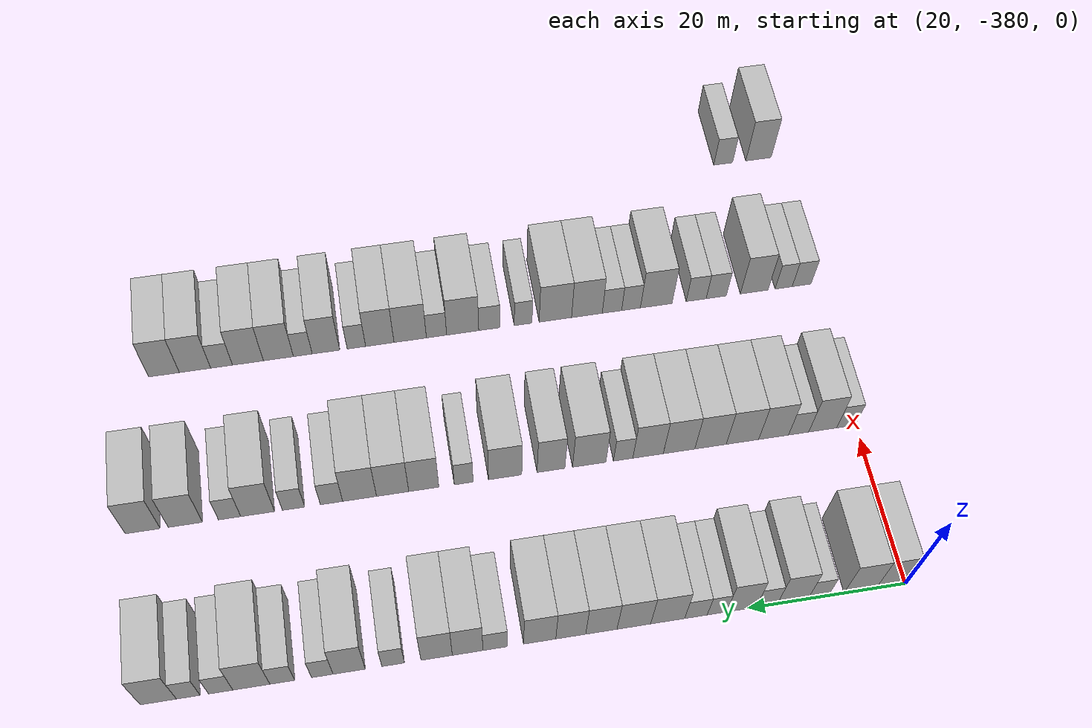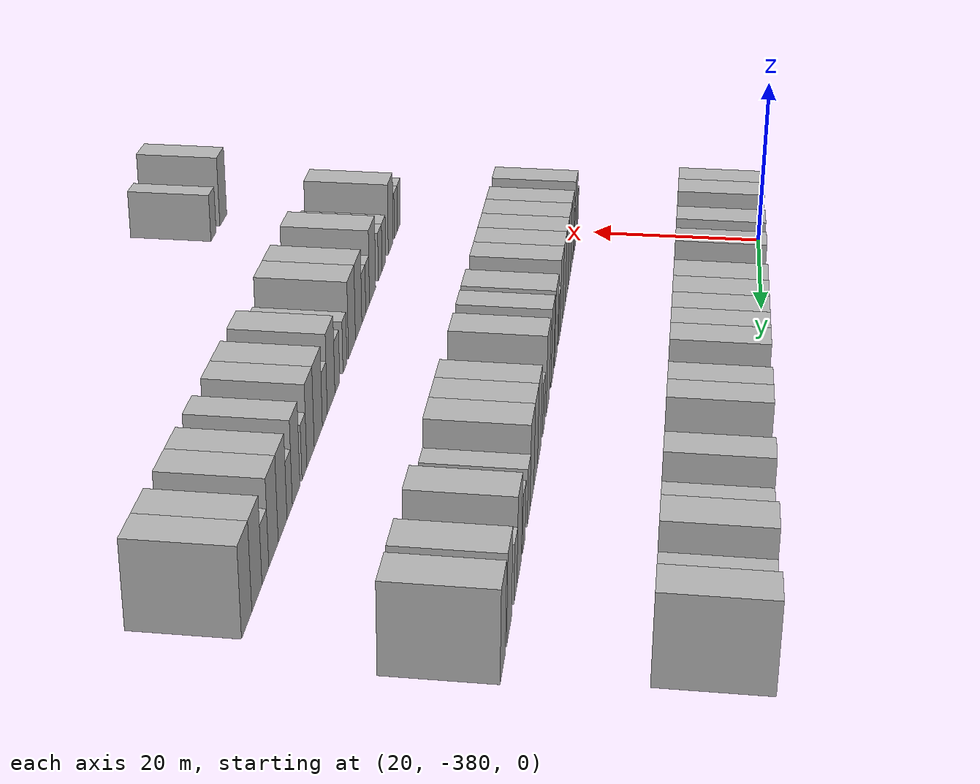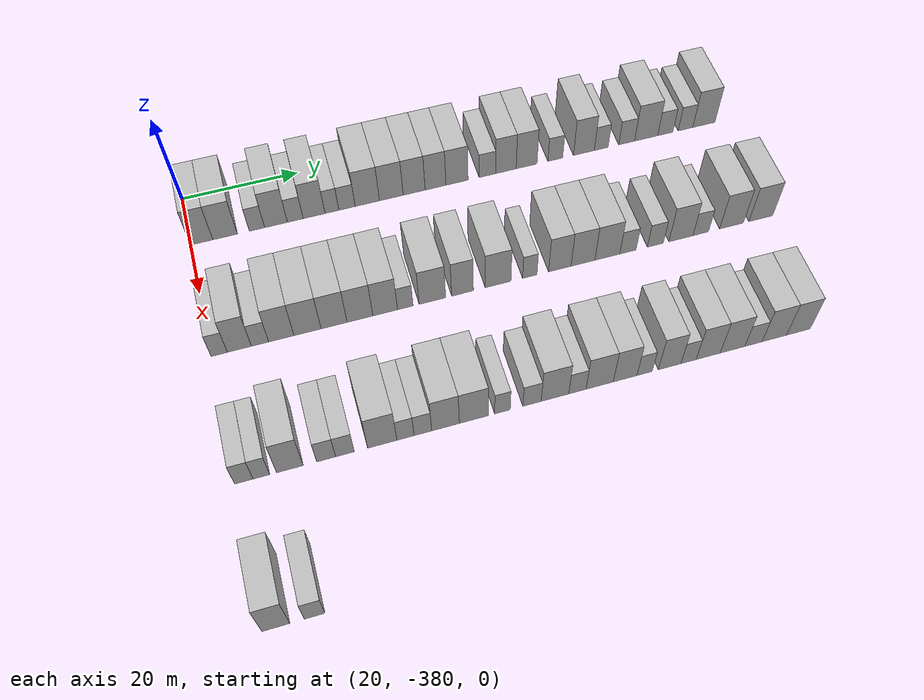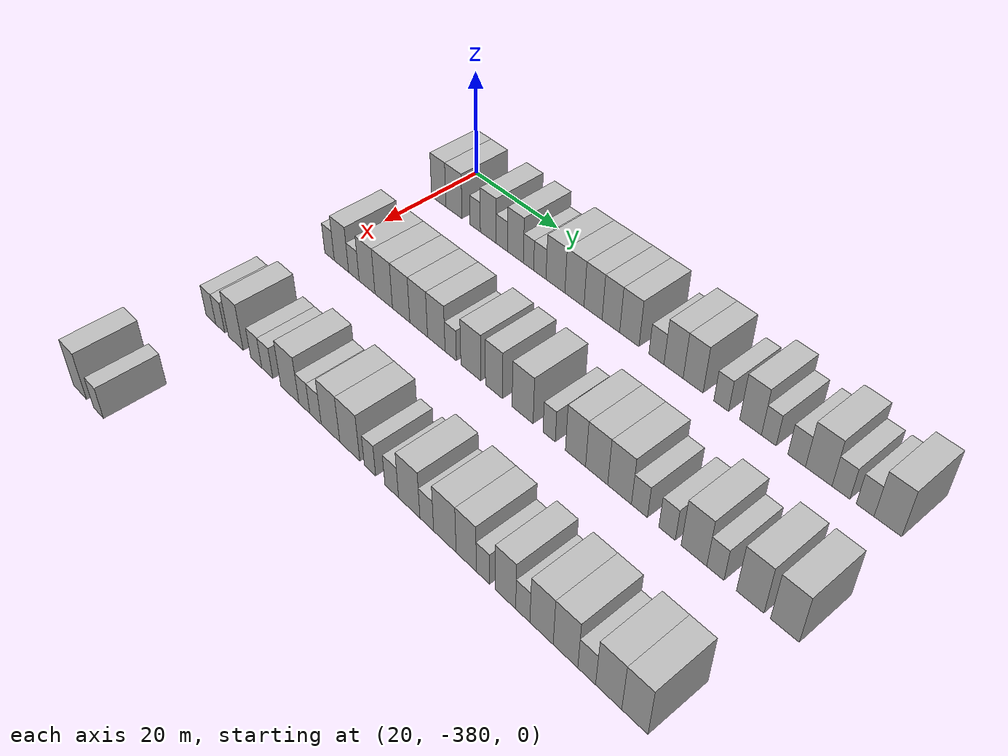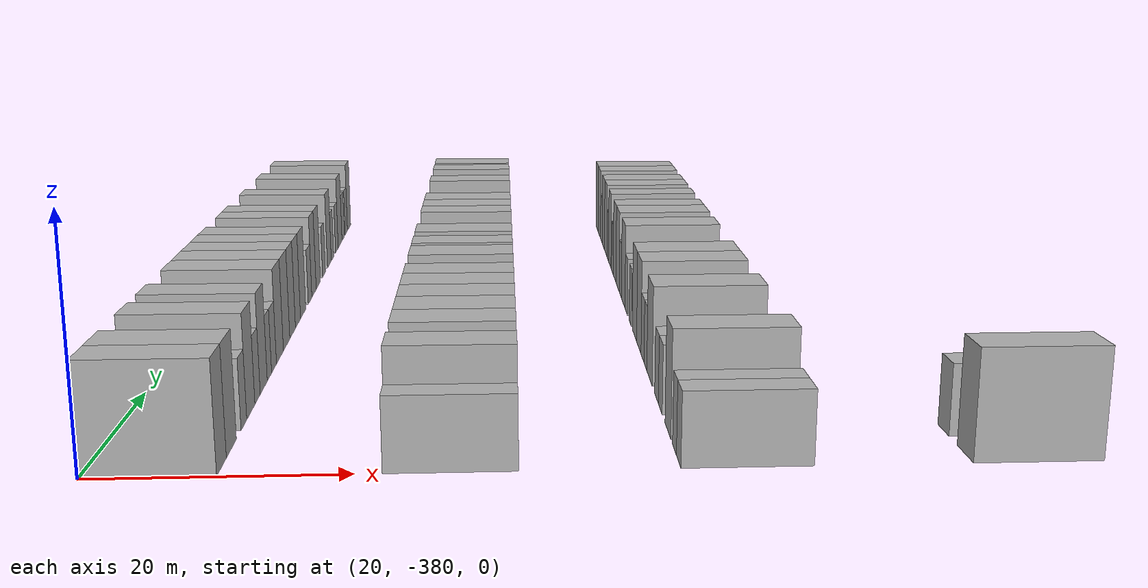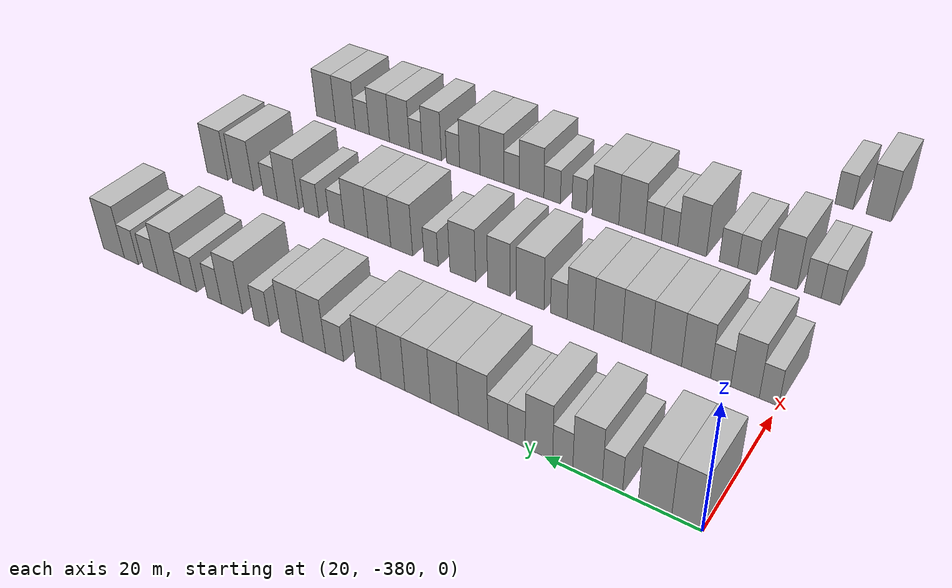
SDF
<sdf version="1.6">
 <world name="default">
  <model name="building_1">
   <static>1</static>
   <pose>25.0000 -378.1393 0 0.000000 0.000000 0.000000</pose>
   <link name="link">
    <pose>0 0 4.50 0 0 0</pose>
    <collision name="collision"><geometry><box><size>10.0000 3.7215 9.0000</size></box></geometry></collision>
    <visual name="visual">
     <cast_shadows>0</cast_shadows>
     <geometry><box><size>10.0000 3.7215 9.0000</size></box></geometry>
     <material>
      <script>
       <uri>model://HANNAS_wall/materials/scripts</uri>
       <uri>model://HANNAS_wall/materials/textures</uri>
       <name>vrc/HANNAS_wall</name>
      </script>
     </material>
    </visual>
   </link>
  </model>
  <model name="building_2">
   <static>1</static>
   <pose>25.0000 -374.2203 0 0.000000 0.000000 0.000000</pose>
   <link name="link">
    <pose>0 0 4.50 0 0 0</pose>
    <collision name="collision"><geometry><box><size>10.0000 4.1165 9.0000</size></box></geometry></collision>
    <visual name="visual">
     <cast_shadows>0</cast_shadows>
     <geometry><box><size>10.0000 4.1165 9.0000</size></box></geometry>
     <material>
      <script>
       <uri>model://HANNAS_wall/materials/scripts</uri>
       <uri>model://HANNAS_wall/materials/textures</uri>
       <name>vrc/HANNAS_wall</name>
      </script>
     </material>
    </visual>
   </link>
  </model>
  <model name="building_3">
   <static>1</static>
   <pose>25.0000 -368.8714 0 0.000000 0.000000 0.000000</pose>
   <link name="link">
    <pose>0 0 3.00 0 0 0</pose>
    <collision name="collision"><geometry><box><size>10.0000 2.5812 6.0000</size></box></geometry></collision>
    <visual name="visual">
     <cast_shadows>0</cast_shadows>
     <geometry><box><size>10.0000 2.5812 6.0000</size></box></geometry>
     <material>
      <script>
       <uri>model://HANNAS_wall/materials/scripts</uri>
       <uri>model://HANNAS_wall/materials/textures</uri>
       <name>vrc/HANNAS_wall</name>
      </script>
     </material>
    </visual>
   </link>
  </model>
  <model name="building_4">
   <static>1</static>
   <pose>25.0000 -365.6456 0 0.000000 0.000000 0.000000</pose>
   <link name="link">
    <pose>0 0 4.50 0 0 0</pose>
    <collision name="collision"><geometry><box><size>10.0000 3.8705 9.0000</size></box></geometry></collision>
    <visual name="visual">
     <cast_shadows>0</cast_shadows>
     <geometry><box><size>10.0000 3.8705 9.0000</size></box></geometry>
     <material>
      <script>
       <uri>model://HANNAS_wall/materials/scripts</uri>
       <uri>model://HANNAS_wall/materials/textures</uri>
       <name>vrc/HANNAS_wall</name>
      </script>
     </material>
    </visual>
   </link>
  </model>
  <model name="building_5">
   <static>1</static>
   <pose>25.0000 -362.3687 0 0.000000 0.000000 0.000000</pose>
   <link name="link">
    <pose>0 0 3.00 0 0 0</pose>
    <collision name="collision"><geometry><box><size>10.0000 2.6834 6.0000</size></box></geometry></collision>
    <visual name="visual">
     <cast_shadows>0</cast_shadows>
     <geometry><box><size>10.0000 2.6834 6.0000</size></box></geometry>
     <material>
      <script>
       <uri>model://HANNAS_wall/materials/scripts</uri>
       <uri>model://HANNAS_wall/materials/textures</uri>
       <name>vrc/HANNAS_wall</name>
      </script>
     </material>
    </visual>
   </link>
  </model>
  <model name="building_6">
   <static>1</static>
   <pose>25.0000 -359.1534 0 0.000000 0.000000 0.000000</pose>
   <link name="link">
    <pose>0 0 4.50 0 0 0</pose>
    <collision name="collision"><geometry><box><size>10.0000 3.7471 9.0000</size></box></geometry></collision>
    <visual name="visual">
     <cast_shadows>0</cast_shadows>
     <geometry><box><size>10.0000 3.7471 9.0000</size></box></geometry>
     <material>
      <script>
       <uri>model://HANNAS_wall/materials/scripts</uri>
       <uri>model://HANNAS_wall/materials/textures</uri>
       <name>vrc/HANNAS_wall</name>
      </script>
     </material>
    </visual>
   </link>
  </model>
  <model name="building_7">
   <static>1</static>
   <pose>25.0000 -356.0795 0 0.000000 0.000000 0.000000</pose>
   <link name="link">
    <pose>0 0 3.00 0 0 0</pose>
    <collision name="collision"><geometry><box><size>10.0000 2.4009 6.0000</size></box></geometry></collision>
    <visual name="visual">
     <cast_shadows>0</cast_shadows>
     <geometry><box><size>10.0000 2.4009 6.0000</size></box></geometry>
     <material>
      <script>
       <uri>model://HANNAS_wall/materials/scripts</uri>
       <uri>model://HANNAS_wall/materials/textures</uri>
       <name>vrc/HANNAS_wall</name>
      </script>
     </material>
    </visual>
   </link>
  </model>
  <model name="building_8">
   <static>1</static>
   <pose>25.0000 -353.4685 0 0.000000 0.000000 0.000000</pose>
   <link name="link">
    <pose>0 0 3.00 0 0 0</pose>
    <collision name="collision"><geometry><box><size>10.0000 2.8210 6.0000</size></box></geometry></collision>
    <visual name="visual">
     <cast_shadows>0</cast_shadows>
     <geometry><box><size>10.0000 2.8210 6.0000</size></box></geometry>
     <material>
      <script>
       <uri>model://HANNAS_wall/materials/scripts</uri>
       <uri>model://HANNAS_wall/materials/textures</uri>
       <name>vrc/HANNAS_wall</name>
      </script>
     </material>
    </visual>
   </link>
  </model>
  <model name="building_9">
   <static>1</static>
   <pose>25.0000 -349.9385 0 0.000000 0.000000 0.000000</pose>
   <link name="link">
    <pose>0 0 4.50 0 0 0</pose>
    <collision name="collision"><geometry><box><size>10.0000 4.2390 9.0000</size></box></geometry></collision>
    <visual name="visual">
     <cast_shadows>0</cast_shadows>
     <geometry><box><size>10.0000 4.2390 9.0000</size></box></geometry>
     <material>
      <script>
       <uri>model://HANNAS_wall/materials/scripts</uri>
       <uri>model://HANNAS_wall/materials/textures</uri>
       <name>vrc/HANNAS_wall</name>
      </script>
     </material>
    </visual>
   </link>
  </model>
  <model name="building_10">
   <static>1</static>
   <pose>25.0000 -345.7279 0 0.000000 0.000000 0.000000</pose>
   <link name="link">
    <pose>0 0 4.50 0 0 0</pose>
    <collision name="collision"><geometry><box><size>10.0000 4.1822 9.0000</size></box></geometry></collision>
    <visual name="visual">
     <cast_shadows>0</cast_shadows>
     <geometry><box><size>10.0000 4.1822 9.0000</size></box></geometry>
     <material>
      <script>
       <uri>model://HANNAS_wall/materials/scripts</uri>
       <uri>model://HANNAS_wall/materials/textures</uri>
       <name>vrc/HANNAS_wall</name>
      </script>
     </material>
    </visual>
   </link>
  </model>
  <model name="building_11">
   <static>1</static>
   <pose>25.0000 -341.6991 0 0.000000 0.000000 0.000000</pose>
   <link name="link">
    <pose>0 0 4.50 0 0 0</pose>
    <collision name="collision"><geometry><box><size>10.0000 3.8754 9.0000</size></box></geometry></collision>
    <visual name="visual">
     <cast_shadows>0</cast_shadows>
     <geometry><box><size>10.0000 3.8754 9.0000</size></box></geometry>
     <material>
      <script>
       <uri>model://HANNAS_wall/materials/scripts</uri>
       <uri>model://HANNAS_wall/materials/textures</uri>
       <name>vrc/HANNAS_wall</name>
      </script>
     </material>
    </visual>
   </link>
  </model>
  <model name="building_12">
   <static>1</static>
   <pose>25.0000 -337.9182 0 0.000000 0.000000 0.000000</pose>
   <link name="link">
    <pose>0 0 4.50 0 0 0</pose>
    <collision name="collision"><geometry><box><size>10.0000 3.6864 9.0000</size></box></geometry></collision>
    <visual name="visual">
     <cast_shadows>0</cast_shadows>
     <geometry><box><size>10.0000 3.6864 9.0000</size></box></geometry>
     <material>
      <script>
       <uri>model://HANNAS_wall/materials/scripts</uri>
       <uri>model://HANNAS_wall/materials/textures</uri>
       <name>vrc/HANNAS_wall</name>
      </script>
     </material>
    </visual>
   </link>
  </model>
  <model name="building_13">
   <static>1</static>
   <pose>25.0000 -334.0940 0 0.000000 0.000000 0.000000</pose>
   <link name="link">
    <pose>0 0 4.50 0 0 0</pose>
    <collision name="collision"><geometry><box><size>10.0000 3.9620 9.0000</size></box></geometry></collision>
    <visual name="visual">
     <cast_shadows>0</cast_shadows>
     <geometry><box><size>10.0000 3.9620 9.0000</size></box></geometry>
     <material>
      <script>
       <uri>model://HANNAS_wall/materials/scripts</uri>
       <uri>model://HANNAS_wall/materials/textures</uri>
       <name>vrc/HANNAS_wall</name>
      </script>
     </material>
    </visual>
   </link>
  </model>
  <model name="building_14">
   <static>1</static>
   <pose>25.0000 -328.6268 0 0.000000 0.000000 0.000000</pose>
   <link name="link">
    <pose>0 0 3.00 0 0 0</pose>
    <collision name="collision"><geometry><box><size>10.0000 2.9724 6.0000</size></box></geometry></collision>
    <visual name="visual">
     <cast_shadows>0</cast_shadows>
     <geometry><box><size>10.0000 2.9724 6.0000</size></box></geometry>
     <material>
      <script>
       <uri>model://HANNAS_wall/materials/scripts</uri>
       <uri>model://HANNAS_wall/materials/textures</uri>
       <name>vrc/HANNAS_wall</name>
      </script>
     </material>
    </visual>
   </link>
  </model>
  <model name="building_15">
   <static>1</static>
   <pose>25.0000 -325.2770 0 0.000000 0.000000 0.000000</pose>
   <link name="link">
    <pose>0 0 4.50 0 0 0</pose>
    <collision name="collision"><geometry><box><size>10.0000 3.7271 9.0000</size></box></geometry></collision>
    <visual name="visual">
     <cast_shadows>0</cast_shadows>
     <geometry><box><size>10.0000 3.7271 9.0000</size></box></geometry>
     <material>
      <script>
       <uri>model://HANNAS_wall/materials/scripts</uri>
       <uri>model://HANNAS_wall/materials/textures</uri>
       <name>vrc/HANNAS_wall</name>
      </script>
     </material>
    </visual>
   </link>
  </model>
  <model name="building_16">
   <static>1</static>
   <pose>25.0000 -321.5112 0 0.000000 0.000000 0.000000</pose>
   <link name="link">
    <pose>0 0 4.50 0 0 0</pose>
    <collision name="collision"><geometry><box><size>10.0000 3.8046 9.0000</size></box></geometry></collision>
    <visual name="visual">
     <cast_shadows>0</cast_shadows>
     <geometry><box><size>10.0000 3.8046 9.0000</size></box></geometry>
     <material>
      <script>
       <uri>model://HANNAS_wall/materials/scripts</uri>
       <uri>model://HANNAS_wall/materials/textures</uri>
       <name>vrc/HANNAS_wall</name>
      </script>
     </material>
    </visual>
   </link>
  </model>
  <model name="building_17">
   <static>1</static>
   <pose>25.0000 -316.2441 0 0.000000 0.000000 0.000000</pose>
   <link name="link">
    <pose>0 0 3.00 0 0 0</pose>
    <collision name="collision"><geometry><box><size>10.0000 2.7297 6.0000</size></box></geometry></collision>
    <visual name="visual">
     <cast_shadows>0</cast_shadows>
     <geometry><box><size>10.0000 2.7297 6.0000</size></box></geometry>
     <material>
      <script>
       <uri>model://HANNAS_wall/materials/scripts</uri>
       <uri>model://HANNAS_wall/materials/textures</uri>
       <name>vrc/HANNAS_wall</name>
      </script>
     </material>
    </visual>
   </link>
  </model>
  <model name="building_18">
   <static>1</static>
   <pose>25.0000 -310.9399 0 0.000000 0.000000 0.000000</pose>
   <link name="link">
    <pose>0 0 4.50 0 0 0</pose>
    <collision name="collision"><geometry><box><size>10.0000 3.8786 9.0000</size></box></geometry></collision>
    <visual name="visual">
     <cast_shadows>0</cast_shadows>
     <geometry><box><size>10.0000 3.8786 9.0000</size></box></geometry>
     <material>
      <script>
       <uri>model://HANNAS_wall/materials/scripts</uri>
       <uri>model://HANNAS_wall/materials/textures</uri>
       <name>vrc/HANNAS_wall</name>
      </script>
     </material>
    </visual>
   </link>
  </model>
  <model name="building_19">
   <static>1</static>
   <pose>25.0000 -307.7134 0 0.000000 0.000000 0.000000</pose>
   <link name="link">
    <pose>0 0 3.00 0 0 0</pose>
    <collision name="collision"><geometry><box><size>10.0000 2.5743 6.0000</size></box></geometry></collision>
    <visual name="visual">
     <cast_shadows>0</cast_shadows>
     <geometry><box><size>10.0000 2.5743 6.0000</size></box></geometry>
     <material>
      <script>
       <uri>model://HANNAS_wall/materials/scripts</uri>
       <uri>model://HANNAS_wall/materials/textures</uri>
       <name>vrc/HANNAS_wall</name>
      </script>
     </material>
    </visual>
   </link>
  </model>
  <model name="building_20">
   <static>1</static>
   <pose>25.0000 -302.9350 0 0.000000 0.000000 0.000000</pose>
   <link name="link">
    <pose>0 0 3.00 0 0 0</pose>
    <collision name="collision"><geometry><box><size>10.0000 2.9827 6.0000</size></box></geometry></collision>
    <visual name="visual">
     <cast_shadows>0</cast_shadows>
     <geometry><box><size>10.0000 2.9827 6.0000</size></box></geometry>
     <material>
      <script>
       <uri>model://HANNAS_wall/materials/scripts</uri>
       <uri>model://HANNAS_wall/materials/textures</uri>
       <name>vrc/HANNAS_wall</name>
      </script>
     </material>
    </visual>
   </link>
  </model>
  <model name="building_21">
   <static>1</static>
   <pose>25.0000 -299.2488 0 0.000000 0.000000 0.000000</pose>
   <link name="link">
    <pose>0 0 4.50 0 0 0</pose>
    <collision name="collision"><geometry><box><size>10.0000 4.3897 9.0000</size></box></geometry></collision>
    <visual name="visual">
     <cast_shadows>0</cast_shadows>
     <geometry><box><size>10.0000 4.3897 9.0000</size></box></geometry>
     <material>
      <script>
       <uri>model://HANNAS_wall/materials/scripts</uri>
       <uri>model://HANNAS_wall/materials/textures</uri>
       <name>vrc/HANNAS_wall</name>
      </script>
     </material>
    </visual>
   </link>
  </model>
  <model name="building_22">
   <static>1</static>
   <pose>25.0000 -295.6107 0 0.000000 0.000000 0.000000</pose>
   <link name="link">
    <pose>0 0 3.00 0 0 0</pose>
    <collision name="collision"><geometry><box><size>10.0000 2.8864 6.0000</size></box></geometry></collision>
    <visual name="visual">
     <cast_shadows>0</cast_shadows>
     <geometry><box><size>10.0000 2.8864 6.0000</size></box></geometry>
     <material>
      <script>
       <uri>model://HANNAS_wall/materials/scripts</uri>
       <uri>model://HANNAS_wall/materials/textures</uri>
       <name>vrc/HANNAS_wall</name>
      </script>
     </material>
    </visual>
   </link>
  </model>
  <model name="building_23">
   <static>1</static>
   <pose>25.0000 -291.7678 0 0.000000 0.000000 0.000000</pose>
   <link name="link">
    <pose>0 0 3.00 0 0 0</pose>
    <collision name="collision"><geometry><box><size>10.0000 2.7995 6.0000</size></box></geometry></collision>
    <visual name="visual">
     <cast_shadows>0</cast_shadows>
     <geometry><box><size>10.0000 2.7995 6.0000</size></box></geometry>
     <material>
      <script>
       <uri>model://HANNAS_wall/materials/scripts</uri>
       <uri>model://HANNAS_wall/materials/textures</uri>
       <name>vrc/HANNAS_wall</name>
      </script>
     </material>
    </visual>
   </link>
  </model>
  <model name="building_24">
   <static>1</static>
   <pose>25.0000 -288.2335 0 0.000000 0.000000 0.000000</pose>
   <link name="link">
    <pose>0 0 4.50 0 0 0</pose>
    <collision name="collision"><geometry><box><size>10.0000 4.2691 9.0000</size></box></geometry></collision>
    <visual name="visual">
     <cast_shadows>0</cast_shadows>
     <geometry><box><size>10.0000 4.2691 9.0000</size></box></geometry>
     <material>
      <script>
       <uri>model://HANNAS_wall/materials/scripts</uri>
       <uri>model://HANNAS_wall/materials/textures</uri>
       <name>vrc/HANNAS_wall</name>
      </script>
     </material>
    </visual>
   </link>
  </model>
  <model name="building_198">
   <static>1</static>
   <pose>47.0000 -378.7286 0 0.000000 0.000000 0.000000</pose>
   <link name="link">
    <pose>0 0 3.00 0 0 0</pose>
    <collision name="collision"><geometry><box><size>10.0000 2.5428 6.0000</size></box></geometry></collision>
    <visual name="visual">
     <cast_shadows>0</cast_shadows>
     <geometry><box><size>10.0000 2.5428 6.0000</size></box></geometry>
     <material>
      <script>
       <uri>model://HANNAS_wall/materials/scripts</uri>
       <uri>model://HANNAS_wall/materials/textures</uri>
       <name>vrc/HANNAS_wall</name>
      </script>
     </material>
    </visual>
   </link>
  </model>
  <model name="building_199">
   <static>1</static>
   <pose>47.0000 -375.5675 0 0.000000 0.000000 0.000000</pose>
   <link name="link">
    <pose>0 0 4.50 0 0 0</pose>
    <collision name="collision"><geometry><box><size>10.0000 3.7793 9.0000</size></box></geometry></collision>
    <visual name="visual">
     <cast_shadows>0</cast_shadows>
     <geometry><box><size>10.0000 3.7793 9.0000</size></box></geometry>
     <material>
      <script>
       <uri>model://HANNAS_wall/materials/scripts</uri>
       <uri>model://HANNAS_wall/materials/textures</uri>
       <name>vrc/HANNAS_wall</name>
      </script>
     </material>
    </visual>
   </link>
  </model>
  <model name="building_200">
   <static>1</static>
   <pose>47.0000 -372.3169 0 0.000000 0.000000 0.000000</pose>
   <link name="link">
    <pose>0 0 3.00 0 0 0</pose>
    <collision name="collision"><geometry><box><size>10.0000 2.7219 6.0000</size></box></geometry></collision>
    <visual name="visual">
     <cast_shadows>0</cast_shadows>
     <geometry><box><size>10.0000 2.7219 6.0000</size></box></geometry>
     <material>
      <script>
       <uri>model://HANNAS_wall/materials/scripts</uri>
       <uri>model://HANNAS_wall/materials/textures</uri>
       <name>vrc/HANNAS_wall</name>
      </script>
     </material>
    </visual>
   </link>
  </model>
  <model name="building_201">
   <static>1</static>
   <pose>47.0000 -368.9480 0 0.000000 0.000000 0.000000</pose>
   <link name="link">
    <pose>0 0 4.50 0 0 0</pose>
    <collision name="collision"><geometry><box><size>10.0000 4.0159 9.0000</size></box></geometry></collision>
    <visual name="visual">
     <cast_shadows>0</cast_shadows>
     <geometry><box><size>10.0000 4.0159 9.0000</size></box></geometry>
     <material>
      <script>
       <uri>model://HANNAS_wall/materials/scripts</uri>
       <uri>model://HANNAS_wall/materials/textures</uri>
       <name>vrc/HANNAS_wall</name>
      </script>
     </material>
    </visual>
   </link>
  </model>
  <model name="building_202">
   <static>1</static>
   <pose>47.0000 -364.7709 0 0.000000 0.000000 0.000000</pose>
   <link name="link">
    <pose>0 0 4.50 0 0 0</pose>
    <collision name="collision"><geometry><box><size>10.0000 4.3383 9.0000</size></box></geometry></collision>
    <visual name="visual">
     <cast_shadows>0</cast_shadows>
     <geometry><box><size>10.0000 4.3383 9.0000</size></box></geometry>
     <material>
      <script>
       <uri>model://HANNAS_wall/materials/scripts</uri>
       <uri>model://HANNAS_wall/materials/textures</uri>
       <name>vrc/HANNAS_wall</name>
      </script>
     </material>
    </visual>
   </link>
  </model>
  <model name="building_203">
   <static>1</static>
   <pose>47.0000 -360.5020 0 0.000000 0.000000 0.000000</pose>
   <link name="link">
    <pose>0 0 4.50 0 0 0</pose>
    <collision name="collision"><geometry><box><size>10.0000 4.1995 9.0000</size></box></geometry></collision>
    <visual name="visual">
     <cast_shadows>0</cast_shadows>
     <geometry><box><size>10.0000 4.1995 9.0000</size></box></geometry>
     <material>
      <script>
       <uri>model://HANNAS_wall/materials/scripts</uri>
       <uri>model://HANNAS_wall/materials/textures</uri>
       <name>vrc/HANNAS_wall</name>
      </script>
     </material>
    </visual>
   </link>
  </model>
  <model name="building_204">
   <static>1</static>
   <pose>47.0000 -356.3060 0 0.000000 0.000000 0.000000</pose>
   <link name="link">
    <pose>0 0 4.50 0 0 0</pose>
    <collision name="collision"><geometry><box><size>10.0000 4.1925 9.0000</size></box></geometry></collision>
    <visual name="visual">
     <cast_shadows>0</cast_shadows>
     <geometry><box><size>10.0000 4.1925 9.0000</size></box></geometry>
     <material>
      <script>
       <uri>model://HANNAS_wall/materials/scripts</uri>
       <uri>model://HANNAS_wall/materials/textures</uri>
       <name>vrc/HANNAS_wall</name>
      </script>
     </material>
    </visual>
   </link>
  </model>
  <model name="building_205">
   <static>1</static>
   <pose>47.0000 -352.1896 0 0.000000 0.000000 0.000000</pose>
   <link name="link">
    <pose>0 0 4.50 0 0 0</pose>
    <collision name="collision"><geometry><box><size>10.0000 4.0402 9.0000</size></box></geometry></collision>
    <visual name="visual">
     <cast_shadows>0</cast_shadows>
     <geometry><box><size>10.0000 4.0402 9.0000</size></box></geometry>
     <material>
      <script>
       <uri>model://HANNAS_wall/materials/scripts</uri>
       <uri>model://HANNAS_wall/materials/textures</uri>
       <name>vrc/HANNAS_wall</name>
      </script>
     </material>
    </visual>
   </link>
  </model>
  <model name="building_206">
   <static>1</static>
   <pose>47.0000 -348.8933 0 0.000000 0.000000 0.000000</pose>
   <link name="link">
    <pose>0 0 3.00 0 0 0</pose>
    <collision name="collision"><geometry><box><size>10.0000 2.5525 6.0000</size></box></geometry></collision>
    <visual name="visual">
     <cast_shadows>0</cast_shadows>
     <geometry><box><size>10.0000 2.5525 6.0000</size></box></geometry>
     <material>
      <script>
       <uri>model://HANNAS_wall/materials/scripts</uri>
       <uri>model://HANNAS_wall/materials/textures</uri>
       <name>vrc/HANNAS_wall</name>
      </script>
     </material>
    </visual>
   </link>
  </model>
  <model name="building_207">
   <static>1</static>
   <pose>47.0000 -344.4195 0 0.000000 0.000000 0.000000</pose>
   <link name="link">
    <pose>0 0 4.50 0 0 0</pose>
    <collision name="collision"><geometry><box><size>10.0000 4.3951 9.0000</size></box></geometry></collision>
    <visual name="visual">
     <cast_shadows>0</cast_shadows>
     <geometry><box><size>10.0000 4.3951 9.0000</size></box></geometry>
     <material>
      <script>
       <uri>model://HANNAS_wall/materials/scripts</uri>
       <uri>model://HANNAS_wall/materials/textures</uri>
       <name>vrc/HANNAS_wall</name>
      </script>
     </material>
    </visual>
   </link>
  </model>
  <model name="building_208">
   <static>1</static>
   <pose>47.0000 -339.3997 0 0.000000 0.000000 0.000000</pose>
   <link name="link">
    <pose>0 0 4.50 0 0 0</pose>
    <collision name="collision"><geometry><box><size>10.0000 3.6445 9.0000</size></box></geometry></collision>
    <visual name="visual">
     <cast_shadows>0</cast_shadows>
     <geometry><box><size>10.0000 3.6445 9.0000</size></box></geometry>
     <material>
      <script>
       <uri>model://HANNAS_wall/materials/scripts</uri>
       <uri>model://HANNAS_wall/materials/textures</uri>
       <name>vrc/HANNAS_wall</name>
      </script>
     </material>
    </visual>
   </link>
  </model>
  <model name="building_209">
   <static>1</static>
   <pose>47.0000 -333.4113 0 0.000000 0.000000 0.000000</pose>
   <link name="link">
    <pose>0 0 4.50 0 0 0</pose>
    <collision name="collision"><geometry><box><size>10.0000 4.3323 9.0000</size></box></geometry></collision>
    <visual name="visual">
     <cast_shadows>0</cast_shadows>
     <geometry><box><size>10.0000 4.3323 9.0000</size></box></geometry>
     <material>
      <script>
       <uri>model://HANNAS_wall/materials/scripts</uri>
       <uri>model://HANNAS_wall/materials/textures</uri>
       <name>vrc/HANNAS_wall</name>
      </script>
     </material>
    </visual>
   </link>
  </model>
  <model name="building_210">
   <static>1</static>
   <pose>47.0000 -328.0263 0 0.000000 0.000000 0.000000</pose>
   <link name="link">
    <pose>0 0 3.00 0 0 0</pose>
    <collision name="collision"><geometry><box><size>10.0000 2.4378 6.0000</size></box></geometry></collision>
    <visual name="visual">
     <cast_shadows>0</cast_shadows>
     <geometry><box><size>10.0000 2.4378 6.0000</size></box></geometry>
     <material>
      <script>
       <uri>model://HANNAS_wall/materials/scripts</uri>
       <uri>model://HANNAS_wall/materials/textures</uri>
       <name>vrc/HANNAS_wall</name>
      </script>
     </material>
    </visual>
   </link>
  </model>
  <model name="building_211">
   <static>1</static>
   <pose>47.0000 -322.8687 0 0.000000 0.000000 0.000000</pose>
   <link name="link">
    <pose>0 0 4.50 0 0 0</pose>
    <collision name="collision"><geometry><box><size>10.0000 3.8773 9.0000</size></box></geometry></collision>
    <visual name="visual">
     <cast_shadows>0</cast_shadows>
     <geometry><box><size>10.0000 3.8773 9.0000</size></box></geometry>
     <material>
      <script>
       <uri>model://HANNAS_wall/materials/scripts</uri>
       <uri>model://HANNAS_wall/materials/textures</uri>
       <name>vrc/HANNAS_wall</name>
      </script>
     </material>
    </visual>
   </link>
  </model>
  <model name="building_212">
   <static>1</static>
   <pose>47.0000 -318.8560 0 0.000000 0.000000 0.000000</pose>
   <link name="link">
    <pose>0 0 4.50 0 0 0</pose>
    <collision name="collision"><geometry><box><size>10.0000 4.1481 9.0000</size></box></geometry></collision>
    <visual name="visual">
     <cast_shadows>0</cast_shadows>
     <geometry><box><size>10.0000 4.1481 9.0000</size></box></geometry>
     <material>
      <script>
       <uri>model://HANNAS_wall/materials/scripts</uri>
       <uri>model://HANNAS_wall/materials/textures</uri>
       <name>vrc/HANNAS_wall</name>
      </script>
     </material>
    </visual>
   </link>
  </model>
  <model name="building_213">
   <static>1</static>
   <pose>47.0000 -314.6109 0 0.000000 0.000000 0.000000</pose>
   <link name="link">
    <pose>0 0 4.50 0 0 0</pose>
    <collision name="collision"><geometry><box><size>10.0000 4.3421 9.0000</size></box></geometry></collision>
    <visual name="visual">
     <cast_shadows>0</cast_shadows>
     <geometry><box><size>10.0000 4.3421 9.0000</size></box></geometry>
     <material>
      <script>
       <uri>model://HANNAS_wall/materials/scripts</uri>
       <uri>model://HANNAS_wall/materials/textures</uri>
       <name>vrc/HANNAS_wall</name>
      </script>
     </material>
    </visual>
   </link>
  </model>
  <model name="building_214">
   <static>1</static>
   <pose>47.0000 -311.0120 0 0.000000 0.000000 0.000000</pose>
   <link name="link">
    <pose>0 0 3.00 0 0 0</pose>
    <collision name="collision"><geometry><box><size>10.0000 2.8558 6.0000</size></box></geometry></collision>
    <visual name="visual">
     <cast_shadows>0</cast_shadows>
     <geometry><box><size>10.0000 2.8558 6.0000</size></box></geometry>
     <material>
      <script>
       <uri>model://HANNAS_wall/materials/scripts</uri>
       <uri>model://HANNAS_wall/materials/textures</uri>
       <name>vrc/HANNAS_wall</name>
      </script>
     </material>
    </visual>
   </link>
  </model>
  <model name="building_215">
   <static>1</static>
   <pose>47.0000 -306.1687 0 0.000000 0.000000 0.000000</pose>
   <link name="link">
    <pose>0 0 3.00 0 0 0</pose>
    <collision name="collision"><geometry><box><size>10.0000 2.8309 6.0000</size></box></geometry></collision>
    <visual name="visual">
     <cast_shadows>0</cast_shadows>
     <geometry><box><size>10.0000 2.8309 6.0000</size></box></geometry>
     <material>
      <script>
       <uri>model://HANNAS_wall/materials/scripts</uri>
       <uri>model://HANNAS_wall/materials/textures</uri>
       <name>vrc/HANNAS_wall</name>
      </script>
     </material>
    </visual>
   </link>
  </model>
  <model name="building_216">
   <static>1</static>
   <pose>47.0000 -301.6097 0 0.000000 0.000000 0.000000</pose>
   <link name="link">
    <pose>0 0 4.50 0 0 0</pose>
    <collision name="collision"><geometry><box><size>10.0000 4.2871 9.0000</size></box></geometry></collision>
    <visual name="visual">
     <cast_shadows>0</cast_shadows>
     <geometry><box><size>10.0000 4.2871 9.0000</size></box></geometry>
     <material>
      <script>
       <uri>model://HANNAS_wall/materials/scripts</uri>
       <uri>model://HANNAS_wall/materials/textures</uri>
       <name>vrc/HANNAS_wall</name>
      </script>
     </material>
    </visual>
   </link>
  </model>
  <model name="building_217">
   <static>1</static>
   <pose>47.0000 -298.0583 0 0.000000 0.000000 0.000000</pose>
   <link name="link">
    <pose>0 0 3.00 0 0 0</pose>
    <collision name="collision"><geometry><box><size>10.0000 2.8157 6.0000</size></box></geometry></collision>
    <visual name="visual">
     <cast_shadows>0</cast_shadows>
     <geometry><box><size>10.0000 2.8157 6.0000</size></box></geometry>
     <material>
      <script>
       <uri>model://HANNAS_wall/materials/scripts</uri>
       <uri>model://HANNAS_wall/materials/textures</uri>
       <name>vrc/HANNAS_wall</name>
      </script>
     </material>
    </visual>
   </link>
  </model>
  <model name="building_218">
   <static>1</static>
   <pose>47.0000 -292.4897 0 0.000000 0.000000 0.000000</pose>
   <link name="link">
    <pose>0 0 4.50 0 0 0</pose>
    <collision name="collision"><geometry><box><size>10.0000 4.3215 9.0000</size></box></geometry></collision>
    <visual name="visual">
     <cast_shadows>0</cast_shadows>
     <geometry><box><size>10.0000 4.3215 9.0000</size></box></geometry>
     <material>
      <script>
       <uri>model://HANNAS_wall/materials/scripts</uri>
       <uri>model://HANNAS_wall/materials/textures</uri>
       <name>vrc/HANNAS_wall</name>
      </script>
     </material>
    </visual>
   </link>
  </model>
  <model name="building_219">
   <static>1</static>
   <pose>47.0000 -287.1444 0 0.000000 0.000000 0.000000</pose>
   <link name="link">
    <pose>0 0 4.50 0 0 0</pose>
    <collision name="collision"><geometry><box><size>10.0000 4.3691 9.0000</size></box></geometry></collision>
    <visual name="visual">
     <cast_shadows>0</cast_shadows>
     <geometry><box><size>10.0000 4.3691 9.0000</size></box></geometry>
     <material>
      <script>
       <uri>model://HANNAS_wall/materials/scripts</uri>
       <uri>model://HANNAS_wall/materials/textures</uri>
       <name>vrc/HANNAS_wall</name>
      </script>
     </material>
    </visual>
   </link>
  </model>
  <model name="building_389">
   <static>1</static>
   <pose>69.0000 -378.6551 0 0.000000 0.000000 0.000000</pose>
   <link name="link">
    <pose>0 0 3.00 0 0 0</pose>
    <collision name="collision"><geometry><box><size>10.0000 2.6899 6.0000</size></box></geometry></collision>
    <visual name="visual">
     <cast_shadows>0</cast_shadows>
     <geometry><box><size>10.0000 2.6899 6.0000</size></box></geometry>
     <material>
      <script>
       <uri>model://HANNAS_wall/materials/scripts</uri>
       <uri>model://HANNAS_wall/materials/textures</uri>
       <name>vrc/HANNAS_wall</name>
      </script>
     </material>
    </visual>
   </link>
  </model>
  <model name="building_390">
   <static>1</static>
   <pose>69.0000 -376.0847 0 0.000000 0.000000 0.000000</pose>
   <link name="link">
    <pose>0 0 3.00 0 0 0</pose>
    <collision name="collision"><geometry><box><size>10.0000 2.4508 6.0000</size></box></geometry></collision>
    <visual name="visual">
     <cast_shadows>0</cast_shadows>
     <geometry><box><size>10.0000 2.4508 6.0000</size></box></geometry>
     <material>
      <script>
       <uri>model://HANNAS_wall/materials/scripts</uri>
       <uri>model://HANNAS_wall/materials/textures</uri>
       <name>vrc/HANNAS_wall</name>
      </script>
     </material>
    </visual>
   </link>
  </model>
  <model name="building_391">
   <static>1</static>
   <pose>69.0000 -371.8899 0 0.000000 0.000000 0.000000</pose>
   <link name="link">
    <pose>0 0 4.50 0 0 0</pose>
    <collision name="collision"><geometry><box><size>10.0000 3.9389 9.0000</size></box></geometry></collision>
    <visual name="visual">
     <cast_shadows>0</cast_shadows>
     <geometry><box><size>10.0000 3.9389 9.0000</size></box></geometry>
     <material>
      <script>
       <uri>model://HANNAS_wall/materials/scripts</uri>
       <uri>model://HANNAS_wall/materials/textures</uri>
       <name>vrc/HANNAS_wall</name>
      </script>
     </material>
    </visual>
   </link>
  </model>
  <model name="building_392">
   <static>1</static>
   <pose>69.0000 -366.4988 0 0.000000 0.000000 0.000000</pose>
   <link name="link">
    <pose>0 0 3.00 0 0 0</pose>
    <collision name="collision"><geometry><box><size>10.0000 2.8432 6.0000</size></box></geometry></collision>
    <visual name="visual">
     <cast_shadows>0</cast_shadows>
     <geometry><box><size>10.0000 2.8432 6.0000</size></box></geometry>
     <material>
      <script>
       <uri>model://HANNAS_wall/materials/scripts</uri>
       <uri>model://HANNAS_wall/materials/textures</uri>
       <name>vrc/HANNAS_wall</name>
      </script>
     </material>
    </visual>
   </link>
  </model>
  <model name="building_393">
   <static>1</static>
   <pose>69.0000 -363.6678 0 0.000000 0.000000 0.000000</pose>
   <link name="link">
    <pose>0 0 3.00 0 0 0</pose>
    <collision name="collision"><geometry><box><size>10.0000 2.8189 6.0000</size></box></geometry></collision>
    <visual name="visual">
     <cast_shadows>0</cast_shadows>
     <geometry><box><size>10.0000 2.8189 6.0000</size></box></geometry>
     <material>
      <script>
       <uri>model://HANNAS_wall/materials/scripts</uri>
       <uri>model://HANNAS_wall/materials/textures</uri>
       <name>vrc/HANNAS_wall</name>
      </script>
     </material>
    </visual>
   </link>
  </model>
  <model name="building_394">
   <static>1</static>
   <pose>69.0000 -358.0318 0 0.000000 0.000000 0.000000</pose>
   <link name="link">
    <pose>0 0 4.50 0 0 0</pose>
    <collision name="collision"><geometry><box><size>10.0000 4.4531 9.0000</size></box></geometry></collision>
    <visual name="visual">
     <cast_shadows>0</cast_shadows>
     <geometry><box><size>10.0000 4.4531 9.0000</size></box></geometry>
     <material>
      <script>
       <uri>model://HANNAS_wall/materials/scripts</uri>
       <uri>model://HANNAS_wall/materials/textures</uri>
       <name>vrc/HANNAS_wall</name>
      </script>
     </material>
    </visual>
   </link>
  </model>
  <model name="building_395">
   <static>1</static>
   <pose>69.0000 -354.4900 0 0.000000 0.000000 0.000000</pose>
   <link name="link">
    <pose>0 0 3.00 0 0 0</pose>
    <collision name="collision"><geometry><box><size>10.0000 2.6305 6.0000</size></box></geometry></collision>
    <visual name="visual">
     <cast_shadows>0</cast_shadows>
     <geometry><box><size>10.0000 2.6305 6.0000</size></box></geometry>
     <material>
      <script>
       <uri>model://HANNAS_wall/materials/scripts</uri>
       <uri>model://HANNAS_wall/materials/textures</uri>
       <name>vrc/HANNAS_wall</name>
      </script>
     </material>
    </visual>
   </link>
  </model>
  <model name="building_396">
   <static>1</static>
   <pose>69.0000 -351.8182 0 0.000000 0.000000 0.000000</pose>
   <link name="link">
    <pose>0 0 3.00 0 0 0</pose>
    <collision name="collision"><geometry><box><size>10.0000 2.7130 6.0000</size></box></geometry></collision>
    <visual name="visual">
     <cast_shadows>0</cast_shadows>
     <geometry><box><size>10.0000 2.7130 6.0000</size></box></geometry>
     <material>
      <script>
       <uri>model://HANNAS_wall/materials/scripts</uri>
       <uri>model://HANNAS_wall/materials/textures</uri>
       <name>vrc/HANNAS_wall</name>
      </script>
     </material>
    </visual>
   </link>
  </model>
  <model name="building_397">
   <static>1</static>
   <pose>69.0000 -348.3198 0 0.000000 0.000000 0.000000</pose>
   <link name="link">
    <pose>0 0 4.50 0 0 0</pose>
    <collision name="collision"><geometry><box><size>10.0000 4.2839 9.0000</size></box></geometry></collision>
    <visual name="visual">
     <cast_shadows>0</cast_shadows>
     <geometry><box><size>10.0000 4.2839 9.0000</size></box></geometry>
     <material>
      <script>
       <uri>model://HANNAS_wall/materials/scripts</uri>
       <uri>model://HANNAS_wall/materials/textures</uri>
       <name>vrc/HANNAS_wall</name>
      </script>
     </material>
    </visual>
   </link>
  </model>
  <model name="building_398">
   <static>1</static>
   <pose>69.0000 -343.9285 0 0.000000 0.000000 0.000000</pose>
   <link name="link">
    <pose>0 0 4.50 0 0 0</pose>
    <collision name="collision"><geometry><box><size>10.0000 4.4986 9.0000</size></box></geometry></collision>
    <visual name="visual">
     <cast_shadows>0</cast_shadows>
     <geometry><box><size>10.0000 4.4986 9.0000</size></box></geometry>
     <material>
      <script>
       <uri>model://HANNAS_wall/materials/scripts</uri>
       <uri>model://HANNAS_wall/materials/textures</uri>
       <name>vrc/HANNAS_wall</name>
      </script>
     </material>
    </visual>
   </link>
  </model>
  <model name="building_399">
   <static>1</static>
   <pose>69.0000 -339.4530 0 0.000000 0.000000 0.000000</pose>
   <link name="link">
    <pose>0 0 3.00 0 0 0</pose>
    <collision name="collision"><geometry><box><size>10.0000 2.4524 6.0000</size></box></geometry></collision>
    <visual name="visual">
     <cast_shadows>0</cast_shadows>
     <geometry><box><size>10.0000 2.4524 6.0000</size></box></geometry>
     <material>
      <script>
       <uri>model://HANNAS_wall/materials/scripts</uri>
       <uri>model://HANNAS_wall/materials/textures</uri>
       <name>vrc/HANNAS_wall</name>
      </script>
     </material>
    </visual>
   </link>
  </model>
  <model name="building_400">
   <static>1</static>
   <pose>69.0000 -334.7751 0 0.000000 0.000000 0.000000</pose>
   <link name="link">
    <pose>0 0 3.00 0 0 0</pose>
    <collision name="collision"><geometry><box><size>10.0000 2.9034 6.0000</size></box></geometry></collision>
    <visual name="visual">
     <cast_shadows>0</cast_shadows>
     <geometry><box><size>10.0000 2.9034 6.0000</size></box></geometry>
     <material>
      <script>
       <uri>model://HANNAS_wall/materials/scripts</uri>
       <uri>model://HANNAS_wall/materials/textures</uri>
       <name>vrc/HANNAS_wall</name>
      </script>
     </material>
    </visual>
   </link>
  </model>
  <model name="building_401">
   <static>1</static>
   <pose>69.0000 -331.1131 0 0.000000 0.000000 0.000000</pose>
   <link name="link">
    <pose>0 0 4.50 0 0 0</pose>
    <collision name="collision"><geometry><box><size>10.0000 4.4207 9.0000</size></box></geometry></collision>
    <visual name="visual">
     <cast_shadows>0</cast_shadows>
     <geometry><box><size>10.0000 4.4207 9.0000</size></box></geometry>
     <material>
      <script>
       <uri>model://HANNAS_wall/materials/scripts</uri>
       <uri>model://HANNAS_wall/materials/textures</uri>
       <name>vrc/HANNAS_wall</name>
      </script>
     </material>
    </visual>
   </link>
  </model>
  <model name="building_402">
   <static>1</static>
   <pose>69.0000 -327.5161 0 0.000000 0.000000 0.000000</pose>
   <link name="link">
    <pose>0 0 3.00 0 0 0</pose>
    <collision name="collision"><geometry><box><size>10.0000 2.7733 6.0000</size></box></geometry></collision>
    <visual name="visual">
     <cast_shadows>0</cast_shadows>
     <geometry><box><size>10.0000 2.7733 6.0000</size></box></geometry>
     <material>
      <script>
       <uri>model://HANNAS_wall/materials/scripts</uri>
       <uri>model://HANNAS_wall/materials/textures</uri>
       <name>vrc/HANNAS_wall</name>
      </script>
     </material>
    </visual>
   </link>
  </model>
  <model name="building_403">
   <static>1</static>
   <pose>69.0000 -323.9155 0 0.000000 0.000000 0.000000</pose>
   <link name="link">
    <pose>0 0 4.50 0 0 0</pose>
    <collision name="collision"><geometry><box><size>10.0000 4.4278 9.0000</size></box></geometry></collision>
    <visual name="visual">
     <cast_shadows>0</cast_shadows>
     <geometry><box><size>10.0000 4.4278 9.0000</size></box></geometry>
     <material>
      <script>
       <uri>model://HANNAS_wall/materials/scripts</uri>
       <uri>model://HANNAS_wall/materials/textures</uri>
       <name>vrc/HANNAS_wall</name>
      </script>
     </material>
    </visual>
   </link>
  </model>
  <model name="building_404">
   <static>1</static>
   <pose>69.0000 -319.7667 0 0.000000 0.000000 0.000000</pose>
   <link name="link">
    <pose>0 0 4.50 0 0 0</pose>
    <collision name="collision"><geometry><box><size>10.0000 3.8698 9.0000</size></box></geometry></collision>
    <visual name="visual">
     <cast_shadows>0</cast_shadows>
     <geometry><box><size>10.0000 3.8698 9.0000</size></box></geometry>
     <material>
      <script>
       <uri>model://HANNAS_wall/materials/scripts</uri>
       <uri>model://HANNAS_wall/materials/textures</uri>
       <name>vrc/HANNAS_wall</name>
      </script>
     </material>
    </visual>
   </link>
  </model>
  <model name="building_405">
   <static>1</static>
   <pose>69.0000 -316.5780 0 0.000000 0.000000 0.000000</pose>
   <link name="link">
    <pose>0 0 3.00 0 0 0</pose>
    <collision name="collision"><geometry><box><size>10.0000 2.5075 6.0000</size></box></geometry></collision>
    <visual name="visual">
     <cast_shadows>0</cast_shadows>
     <geometry><box><size>10.0000 2.5075 6.0000</size></box></geometry>
     <material>
      <script>
       <uri>model://HANNAS_wall/materials/scripts</uri>
       <uri>model://HANNAS_wall/materials/textures</uri>
       <name>vrc/HANNAS_wall</name>
      </script>
     </material>
    </visual>
   </link>
  </model>
  <model name="building_406">
   <static>1</static>
   <pose>69.0000 -312.4558 0 0.000000 0.000000 0.000000</pose>
   <link name="link">
    <pose>0 0 4.50 0 0 0</pose>
    <collision name="collision"><geometry><box><size>10.0000 3.7368 9.0000</size></box></geometry></collision>
    <visual name="visual">
     <cast_shadows>0</cast_shadows>
     <geometry><box><size>10.0000 3.7368 9.0000</size></box></geometry>
     <material>
      <script>
       <uri>model://HANNAS_wall/materials/scripts</uri>
       <uri>model://HANNAS_wall/materials/textures</uri>
       <name>vrc/HANNAS_wall</name>
      </script>
     </material>
    </visual>
   </link>
  </model>
  <model name="building_407">
   <static>1</static>
   <pose>69.0000 -309.3177 0 0.000000 0.000000 0.000000</pose>
   <link name="link">
    <pose>0 0 3.00 0 0 0</pose>
    <collision name="collision"><geometry><box><size>10.0000 2.5395 6.0000</size></box></geometry></collision>
    <visual name="visual">
     <cast_shadows>0</cast_shadows>
     <geometry><box><size>10.0000 2.5395 6.0000</size></box></geometry>
     <material>
      <script>
       <uri>model://HANNAS_wall/materials/scripts</uri>
       <uri>model://HANNAS_wall/materials/textures</uri>
       <name>vrc/HANNAS_wall</name>
      </script>
     </material>
    </visual>
   </link>
  </model>
  <model name="building_408">
   <static>1</static>
   <pose>69.0000 -306.0272 0 0.000000 0.000000 0.000000</pose>
   <link name="link">
    <pose>0 0 4.50 0 0 0</pose>
    <collision name="collision"><geometry><box><size>10.0000 4.0415 9.0000</size></box></geometry></collision>
    <visual name="visual">
     <cast_shadows>0</cast_shadows>
     <geometry><box><size>10.0000 4.0415 9.0000</size></box></geometry>
     <material>
      <script>
       <uri>model://HANNAS_wall/materials/scripts</uri>
       <uri>model://HANNAS_wall/materials/textures</uri>
       <name>vrc/HANNAS_wall</name>
      </script>
     </material>
    </visual>
   </link>
  </model>
  <model name="building_409">
   <static>1</static>
   <pose>69.0000 -301.9295 0 0.000000 0.000000 0.000000</pose>
   <link name="link">
    <pose>0 0 4.50 0 0 0</pose>
    <collision name="collision"><geometry><box><size>10.0000 4.1539 9.0000</size></box></geometry></collision>
    <visual name="visual">
     <cast_shadows>0</cast_shadows>
     <geometry><box><size>10.0000 4.1539 9.0000</size></box></geometry>
     <material>
      <script>
       <uri>model://HANNAS_wall/materials/scripts</uri>
       <uri>model://HANNAS_wall/materials/textures</uri>
       <name>vrc/HANNAS_wall</name>
      </script>
     </material>
    </visual>
   </link>
  </model>
  <model name="building_410">
   <static>1</static>
   <pose>69.0000 -298.3894 0 0.000000 0.000000 0.000000</pose>
   <link name="link">
    <pose>0 0 3.00 0 0 0</pose>
    <collision name="collision"><geometry><box><size>10.0000 2.9263 6.0000</size></box></geometry></collision>
    <visual name="visual">
     <cast_shadows>0</cast_shadows>
     <geometry><box><size>10.0000 2.9263 6.0000</size></box></geometry>
     <material>
      <script>
       <uri>model://HANNAS_wall/materials/scripts</uri>
       <uri>model://HANNAS_wall/materials/textures</uri>
       <name>vrc/HANNAS_wall</name>
      </script>
     </material>
    </visual>
   </link>
  </model>
  <model name="building_411">
   <static>1</static>
   <pose>69.0000 -294.8360 0 0.000000 0.000000 0.000000</pose>
   <link name="link">
    <pose>0 0 4.50 0 0 0</pose>
    <collision name="collision"><geometry><box><size>10.0000 4.1804 9.0000</size></box></geometry></collision>
    <visual name="visual">
     <cast_shadows>0</cast_shadows>
     <geometry><box><size>10.0000 4.1804 9.0000</size></box></geometry>
     <material>
      <script>
       <uri>model://HANNAS_wall/materials/scripts</uri>
       <uri>model://HANNAS_wall/materials/textures</uri>
       <name>vrc/HANNAS_wall</name>
      </script>
     </material>
    </visual>
   </link>
  </model>
  <model name="building_412">
   <static>1</static>
   <pose>69.0000 -290.7035 0 0.000000 0.000000 0.000000</pose>
   <link name="link">
    <pose>0 0 4.50 0 0 0</pose>
    <collision name="collision"><geometry><box><size>10.0000 4.0846 9.0000</size></box></geometry></collision>
    <visual name="visual">
     <cast_shadows>0</cast_shadows>
     <geometry><box><size>10.0000 4.0846 9.0000</size></box></geometry>
     <material>
      <script>
       <uri>model://HANNAS_wall/materials/scripts</uri>
       <uri>model://HANNAS_wall/materials/textures</uri>
       <name>vrc/HANNAS_wall</name>
      </script>
     </material>
    </visual>
   </link>
  </model>
  <model name="building_585">
   <static>1</static>
   <pose>91.0000 -378.0953 0 0.000000 0.000000 0.000000</pose>
   <link name="link">
    <pose>0 0 4.50 0 0 0</pose>
    <collision name="collision"><geometry><box><size>10.0000 3.8094 9.0000</size></box></geometry></collision>
    <visual name="visual">
     <cast_shadows>0</cast_shadows>
     <geometry><box><size>10.0000 3.8094 9.0000</size></box></geometry>
     <material>
      <script>
       <uri>model://HANNAS_wall/materials/scripts</uri>
       <uri>model://HANNAS_wall/materials/textures</uri>
       <name>vrc/HANNAS_wall</name>
      </script>
     </material>
    </visual>
   </link>
  </model>
  <model name="building_586">
   <static>1</static>
   <pose>91.0000 -372.7800 0 0.000000 0.000000 0.000000</pose>
   <link name="link">
    <pose>0 0 3.00 0 0 0</pose>
    <collision name="collision"><geometry><box><size>10.0000 2.8213 6.0000</size></box></geometry></collision>
    <visual name="visual">
     <cast_shadows>0</cast_shadows>
     <geometry><box><size>10.0000 2.8213 6.0000</size></box></geometry>
     <material>
      <script>
       <uri>model://HANNAS_wall/materials/scripts</uri>
       <uri>model://HANNAS_wall/materials/textures</uri>
       <name>vrc/HANNAS_wall</name>
      </script>
     </material>
    </visual>
   </link>
  </model>
 </world>
</sdf>
